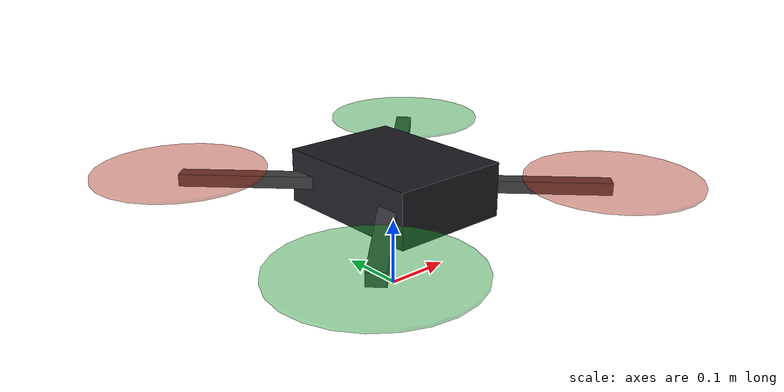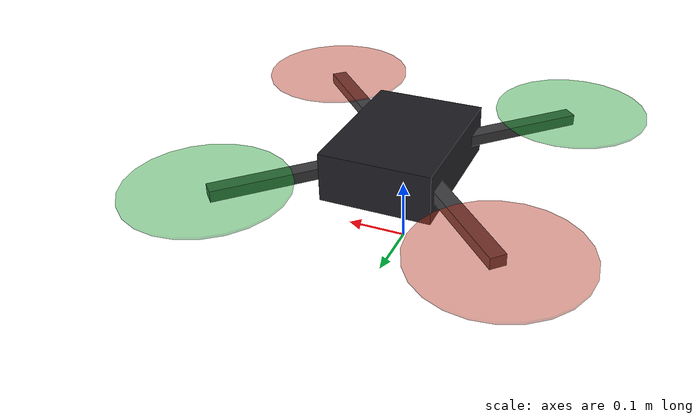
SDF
<?xml version="1.0"?>
<sdf version="1.10">
  <model name="interceptor">
    <pose>0 0 0.16 0 0 1.57079632679</pose>
    <self_collide>false</self_collide>
    <link name="base_link">
      <inertial>
        <mass>2.372</mass>
        <inertia>
          <ixx>0.070</ixx><iyy>0.070</iyy><izz>0.120</izz>
          <ixy>0</ixy><ixz>0</ixz><iyz>0</iyz>
        </inertia>
      </inertial>
      <collision name="body_collision">
        <geometry><box><size>0.24 0.18 0.08</size></box></geometry>
      </collision>
      <visual name="body_visual">
        <geometry><box><size>0.24 0.18 0.08</size></box></geometry>
        <material><ambient>0.05 0.05 0.06 1</ambient><diffuse>0.12 0.12 0.14 1</diffuse></material>
      </visual>
      <visual name="arm_ne_sw">
        <pose>0 0 0 0 0 0.785398</pose>
        <geometry><box><size>0.62 0.025 0.018</size></box></geometry>
        <material><ambient>0.15 0.15 0.16 1</ambient><diffuse>0.25 0.25 0.26 1</diffuse></material>
      </visual>
      <visual name="arm_nw_se">
        <pose>0 0 0 0 0 -0.785398</pose>
        <geometry><box><size>0.62 0.025 0.018</size></box></geometry>
        <material><ambient>0.15 0.15 0.16 1</ambient><diffuse>0.25 0.25 0.26 1</diffuse></material>
      </visual>
      <sensor name="upward_camera" type="camera">
        <pose>0 0 0.06 0 -1.57079632679 0</pose>
        <topic>/world/png_betaflight_sitl/model/interceptor/link/base_link/sensor/upward_camera/image</topic>
        <update_rate>30</update_rate>
        <camera>
          <horizontal_fov>1.08213</horizontal_fov>
          <image><width>640</width><height>512</height><format>R8G8B8</format></image>
          <clip><near>0.05</near><far>100</far></clip>
        </camera>
        <always_on>true</always_on>
        <visualize>false</visualize>
      </sensor>
    </link>

    <link name="motor_front_right"><pose relative_to="base_link">0.22 -0.22 0.01 0 0 0</pose><inertial><mass>0.01</mass><inertia><ixx>0.00002</ixx><iyy>0.00002</iyy><izz>0.00004</izz><ixy>0</ixy><ixz>0</ixz><iyz>0</iyz></inertia></inertial><visual name="rotor"><geometry><cylinder><radius>0.127</radius><length>0.004</length></cylinder></geometry><material><ambient>0.1 0.7 0.2 0.45</ambient><diffuse>0.1 0.7 0.2 0.45</diffuse></material></visual></link>
    <link name="motor_rear_left"><pose relative_to="base_link">-0.22 0.22 0.01 0 0 0</pose><inertial><mass>0.01</mass><inertia><ixx>0.00002</ixx><iyy>0.00002</iyy><izz>0.00004</izz><ixy>0</ixy><ixz>0</ixz><iyz>0</iyz></inertia></inertial><visual name="rotor"><geometry><cylinder><radius>0.127</radius><length>0.004</length></cylinder></geometry><material><ambient>0.1 0.7 0.2 0.45</ambient><diffuse>0.1 0.7 0.2 0.45</diffuse></material></visual></link>
    <link name="motor_front_left"><pose relative_to="base_link">0.22 0.22 0.01 0 0 0</pose><inertial><mass>0.01</mass><inertia><ixx>0.00002</ixx><iyy>0.00002</iyy><izz>0.00004</izz><ixy>0</ixy><ixz>0</ixz><iyz>0</iyz></inertia></inertial><visual name="rotor"><geometry><cylinder><radius>0.127</radius><length>0.004</length></cylinder></geometry><material><ambient>0.8 0.2 0.1 0.45</ambient><diffuse>0.8 0.2 0.1 0.45</diffuse></material></visual></link>
    <link name="motor_rear_right"><pose relative_to="base_link">-0.22 -0.22 0.01 0 0 0</pose><inertial><mass>0.01</mass><inertia><ixx>0.00002</ixx><iyy>0.00002</iyy><izz>0.00004</izz><ixy>0</ixy><ixz>0</ixz><iyz>0</iyz></inertia></inertial><visual name="rotor"><geometry><cylinder><radius>0.127</radius><length>0.004</length></cylinder></geometry><material><ambient>0.8 0.2 0.1 0.45</ambient><diffuse>0.8 0.2 0.1 0.45</diffuse></material></visual></link>

    <joint name="motor_front_right_joint" type="revolute"><parent>base_link</parent><child>motor_front_right</child><axis><xyz>0 0 1</xyz><limit><lower>-1e16</lower><upper>1e16</upper></limit></axis></joint>
    <joint name="motor_rear_left_joint" type="revolute"><parent>base_link</parent><child>motor_rear_left</child><axis><xyz>0 0 1</xyz><limit><lower>-1e16</lower><upper>1e16</upper></limit></axis></joint>
    <joint name="motor_front_left_joint" type="revolute"><parent>base_link</parent><child>motor_front_left</child><axis><xyz>0 0 1</xyz><limit><lower>-1e16</lower><upper>1e16</upper></limit></axis></joint>
    <joint name="motor_rear_right_joint" type="revolute"><parent>base_link</parent><child>motor_rear_right</child><axis><xyz>0 0 1</xyz><limit><lower>-1e16</lower><upper>1e16</upper></limit></axis></joint>

    <!-- Official SITL publishes normalized motors as M2,M3,M4,M1. -->
    <plugin filename="gz-sim-multicopter-motor-model-system" name="gz::sim::systems::MulticopterMotorModel"><robotNamespace>interceptor</robotNamespace><jointName>motor_front_right_joint</jointName><linkName>motor_front_right</linkName><turningDirection>cw</turningDirection><timeConstantUp>0.025</timeConstantUp><timeConstantDown>0.04</timeConstantDown><maxRotVelocity>2200</maxRotVelocity><motorConstant>1.62e-05</motorConstant><momentConstant>0.016</momentConstant><commandSubTopic>command/motor_speed</commandSubTopic><actuator_number>0</actuator_number><rotorDragCoefficient>8.0e-05</rotorDragCoefficient><rollingMomentCoefficient>1e-06</rollingMomentCoefficient><motorSpeedPubTopic>motor_speed/0</motorSpeedPubTopic><rotorVelocitySlowdownSim>10</rotorVelocitySlowdownSim><motorType>velocity</motorType></plugin>
    <plugin filename="gz-sim-multicopter-motor-model-system" name="gz::sim::systems::MulticopterMotorModel"><robotNamespace>interceptor</robotNamespace><jointName>motor_rear_left_joint</jointName><linkName>motor_rear_left</linkName><turningDirection>cw</turningDirection><timeConstantUp>0.025</timeConstantUp><timeConstantDown>0.04</timeConstantDown><maxRotVelocity>2200</maxRotVelocity><motorConstant>1.62e-05</motorConstant><momentConstant>0.016</momentConstant><commandSubTopic>command/motor_speed</commandSubTopic><actuator_number>1</actuator_number><rotorDragCoefficient>8.0e-05</rotorDragCoefficient><rollingMomentCoefficient>1e-06</rollingMomentCoefficient><motorSpeedPubTopic>motor_speed/1</motorSpeedPubTopic><rotorVelocitySlowdownSim>10</rotorVelocitySlowdownSim><motorType>velocity</motorType></plugin>
    <plugin filename="gz-sim-multicopter-motor-model-system" name="gz::sim::systems::MulticopterMotorModel"><robotNamespace>interceptor</robotNamespace><jointName>motor_front_left_joint</jointName><linkName>motor_front_left</linkName><turningDirection>ccw</turningDirection><timeConstantUp>0.025</timeConstantUp><timeConstantDown>0.04</timeConstantDown><maxRotVelocity>2200</maxRotVelocity><motorConstant>1.62e-05</motorConstant><momentConstant>0.016</momentConstant><commandSubTopic>command/motor_speed</commandSubTopic><actuator_number>2</actuator_number><rotorDragCoefficient>8.0e-05</rotorDragCoefficient><rollingMomentCoefficient>1e-06</rollingMomentCoefficient><motorSpeedPubTopic>motor_speed/2</motorSpeedPubTopic><rotorVelocitySlowdownSim>10</rotorVelocitySlowdownSim><motorType>velocity</motorType></plugin>
    <plugin filename="gz-sim-multicopter-motor-model-system" name="gz::sim::systems::MulticopterMotorModel"><robotNamespace>interceptor</robotNamespace><jointName>motor_rear_right_joint</jointName><linkName>motor_rear_right</linkName><turningDirection>ccw</turningDirection><timeConstantUp>0.025</timeConstantUp><timeConstantDown>0.04</timeConstantDown><maxRotVelocity>2200</maxRotVelocity><motorConstant>1.62e-05</motorConstant><momentConstant>0.016</momentConstant><commandSubTopic>command/motor_speed</commandSubTopic><actuator_number>3</actuator_number><rotorDragCoefficient>8.0e-05</rotorDragCoefficient><rollingMomentCoefficient>1e-06</rollingMomentCoefficient><motorSpeedPubTopic>motor_speed/3</motorSpeedPubTopic><rotorVelocitySlowdownSim>10</rotorVelocitySlowdownSim><motorType>velocity</motorType></plugin>

    <plugin filename="libPngBetaflightSilBridge.so" name="png::sitl::BetaflightSilBridge">
      <motorCommandTopic>/interceptor/command/motor_speed</motorCommandTopic>
      <maxRotVelocity>2200</maxRotVelocity>
      <originLatitudeDeg>22.7991667</originLatitudeDeg>
      <originLongitudeDeg>113.86</originLongitudeDeg>
      <originAltitudeM>20</originAltitudeM>
    </plugin>
    <plugin filename="gz-sim-pose-publisher-system" name="gz::sim::systems::PosePublisher">
      <publish_link_pose>false</publish_link_pose>
      <publish_model_pose>true</publish_model_pose>
      <publish_collision_pose>false</publish_collision_pose>
      <publish_visual_pose>false</publish_visual_pose>
      <publish_sensor_pose>false</publish_sensor_pose>
      <publish_nested_model_pose>false</publish_nested_model_pose>
      <update_frequency>50</update_frequency>
      <use_pose_vector_msg>true</use_pose_vector_msg>
    </plugin>
  </model>
</sdf>
